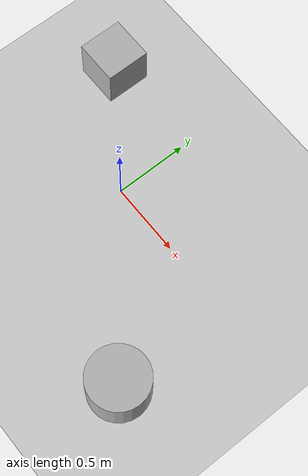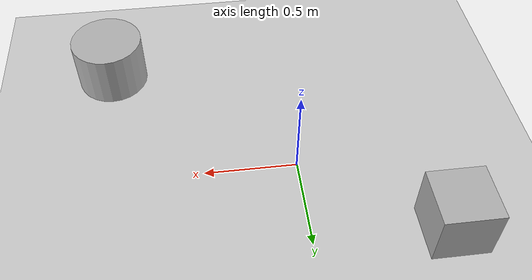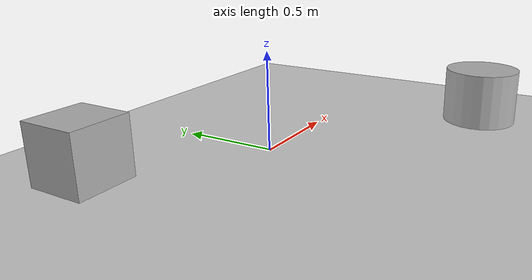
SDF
<sdf version='1.10'>
  <world name='empty'>
    <physics name='1ms' type='ignored'>
      <max_step_size>0.001</max_step_size>
      <real_time_factor>1</real_time_factor>
      <real_time_update_rate>1000</real_time_update_rate>
    </physics>
    <plugin name='gz::sim::systems::Physics' filename='gz-sim-physics-system'/>
    <plugin name='gz::sim::systems::UserCommands' filename='gz-sim-user-commands-system'/>
    <plugin name='gz::sim::systems::SceneBroadcaster' filename='gz-sim-scene-broadcaster-system'/>
    <plugin name='gz::sim::systems::Contact' filename='gz-sim-contact-system'/>
    <plugin name='gz::sim::systems::Imu' filename='gz-sim-imu-system'/>
    <gravity>0 0 -9.8000000000000007</gravity>
    <magnetic_field>5.5644999999999998e-06 2.2875799999999999e-05 -4.2388400000000002e-05</magnetic_field>
    <atmosphere type='adiabatic'/>
    <scene>
      <ambient>0.400000006 0.400000006 0.400000006 1</ambient>
      <background>0.699999988 0.699999988 0.699999988 1</background>
      <shadows>true</shadows>
    </scene>
    <model name='ground_plane'>
      <static>true</static>
      <link name='link'>
        <collision name='collision'>
          <geometry>
            <plane>
              <normal>0 0 1</normal>
              <size>100 100</size>
            </plane>
          </geometry>
          <surface>
            <friction>
              <ode/>
            </friction>
            <bounce/>
            <contact/>
          </surface>
        </collision>
        <visual name='visual'>
          <geometry>
            <plane>
              <normal>0 0 1</normal>
              <size>100 100</size>
            </plane>
          </geometry>
          <material>
            <ambient>0.800000012 0.800000012 0.800000012 1</ambient>
            <diffuse>0.800000012 0.800000012 0.800000012 1</diffuse>
            <specular>0.800000012 0.800000012 0.800000012 1</specular>
          </material>
        </visual>
        <pose>0 0 0 0 0 0</pose>
        <inertial>
          <pose>0 0 0 0 0 0</pose>
          <mass>1</mass>
          <inertia>
            <ixx>1</ixx>
            <ixy>0</ixy>
            <ixz>0</ixz>
            <iyy>1</iyy>
            <iyz>0</iyz>
            <izz>1</izz>
          </inertia>
        </inertial>
        <enable_wind>false</enable_wind>
      </link>
      <pose>0 0 0 0 0 0</pose>
      <self_collide>false</self_collide>
    </model>
    <model name='cylinder'>
      <pose>1.0 -0.8 0.15 0 0 0</pose>
      <link name='cylinder_link'>
        <inertial>
          <inertia>
            <ixx>0.145</ixx>
            <ixy>0</ixy>
            <ixz>0</ixz>
            <iyy>0.145</iyy>
            <iyz>0</iyz>
            <izz>0.125</izz>
          </inertia>
          <mass>1</mass>
          <pose>0 0 0 0 0 0</pose>
        </inertial>
        <collision name='cylinder_collision'>
          <geometry>
            <cylinder>
              <radius>0.2</radius>
              <length>0.3</length>
            </cylinder>
          </geometry>
          <surface>
            <friction>
              <ode/>
            </friction>
            <bounce/>
            <contact/>
          </surface>
        </collision>
        <visual name='cylinder_visual'>
          <geometry>
            <cylinder>
              <radius>0.2</radius>
              <length>0.3</length>
            </cylinder>
          </geometry>
          <material>
            <ambient>0.300000012 0.300000012 0.300000012 1</ambient>
            <diffuse>0.699999988 0.699999988 0.699999988 1</diffuse>
            <specular>1 1 1 1</specular>
          </material>
          <plugin filename="gz-sim-label-system" name="gz::sim::systems::Label">
            <label>10</label>
          </plugin>
        </visual>
        <pose>0 0 0 0 0 0</pose>
        <enable_wind>false</enable_wind>
      </link>
      <static>false</static>
      <self_collide>false</self_collide>
    </model>
    <model name='box'>
      <pose>-0.7 0.5 0.15 0 0 0</pose>
      <link name='box_link'>
        <inertial>
          <inertia>
            <ixx>0.16666</ixx>
            <ixy>0</ixy>
            <ixz>0</ixz>
            <iyy>0.16666</iyy>
            <iyz>0</iyz>
            <izz>0.16666</izz>
          </inertia>
          <mass>1</mass>
          <pose>0 0 0 0 0 0</pose>
        </inertial>
        <collision name='box_collision'>
          <geometry>
            <box>
              <size>0.3 0.3 0.3</size>
            </box>
          </geometry>
          <surface>
            <friction>
              <ode/>
            </friction>
            <bounce/>
            <contact/>
          </surface>
        </collision>
        <visual name='box_visual'>
          <geometry>
            <box>
              <size>0.3 0.3 0.3</size>
            </box>
          </geometry>
          <material>
            <ambient>0.300000012 0.300000012 0.300000012 1</ambient>
            <diffuse>0.699999988 0.699999988 0.699999988 1</diffuse>
            <specular>1 1 1 1</specular>
          </material>
        </visual>
        <pose>0 0 0 0 0 0</pose>
        <enable_wind>false</enable_wind>
      </link>
      <static>false</static>
      <self_collide>false</self_collide>
    </model>
    <light name='sun' type='directional'>
      <pose>0 0 10 0 0 0</pose>
      <cast_shadows>true</cast_shadows>
      <intensity>1</intensity>
      <direction>-0.5 0.10000000000000001 -0.90000000000000002</direction>
      <diffuse>0.800000012 0.800000012 0.800000012 1</diffuse>
      <specular>0.200000003 0.200000003 0.200000003 1</specular>
      <attenuation>
        <range>1000</range>
        <linear>0.01</linear>
        <constant>0.90000000000000002</constant>
        <quadratic>0.001</quadratic>
      </attenuation>
      <spot>
        <inner_angle>0</inner_angle>
        <outer_angle>0</outer_angle>
        <falloff>0</falloff>
      </spot>
    </light>
  </world>
</sdf>
